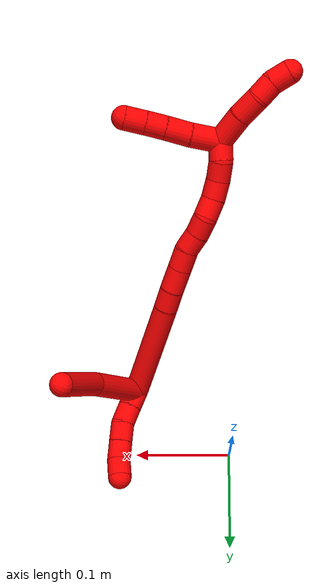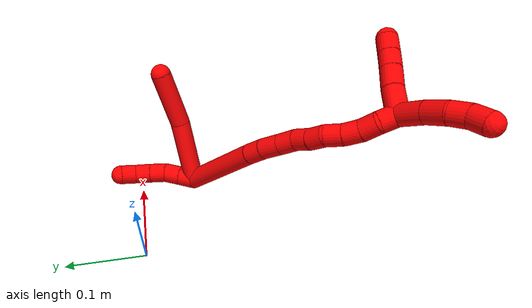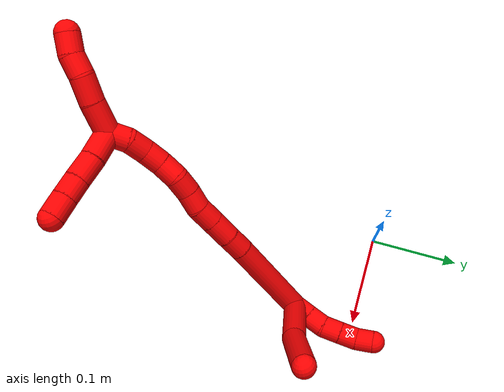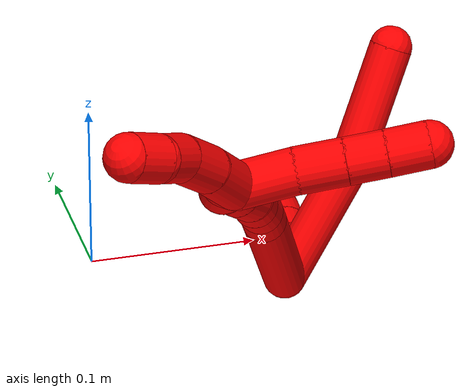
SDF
<sdf version="1.7">
 <world name="default">
  <model name="2">
   <static>0</static>
   <link name="2">
    <collision name="collision-cylinder-e_1_2_8">
     <pose>0.036523 -0.007193 0.015218 0.441521 1.13894 0.2854</pose>
     <geometry><cylinder><radius>0.0125</radius><length>0.08043</length></cylinder></geometry>
     <surface>
      <friction><ode><mu>1.16</mu><mu2>1.16</mu2><slip1>0</slip1><slip2>0</slip2></ode></friction>
      <contact><ode><kp>1e+06</kp><kd>1</kd><max_vel>0</max_vel><min_depth>0.001</min_depth></ode></contact>
     </surface>
    </collision>
    <visual name="visual-cylinder-e_1_2_8">
     <pose>0.036523 -0.007193 0.015218 0.441521 1.13894 0.2854</pose>
     <geometry><cylinder><radius>0.0125</radius><length>0.08043</length></cylinder></geometry>
     <material><ambient>1 0 0 1</ambient></material>
    </visual>
    <collision name="collision-cylinder-e_2_8_6">
     <pose>0.104374 -0.014484 0.045553 0.006518 1.12123 0.004092</pose>
     <geometry><cylinder><radius>0.0125</radius><length>0.06957</length></cylinder></geometry>
     <surface>
      <friction><ode><mu>1.16</mu><mu2>1.16</mu2><slip1>0</slip1><slip2>0</slip2></ode></friction>
      <contact><ode><kp>1e+06</kp><kd>1</kd><max_vel>0</max_vel><min_depth>0.001</min_depth></ode></contact>
     </surface>
    </collision>
    <visual name="visual-cylinder-e_2_8_6">
     <pose>0.104374 -0.014484 0.045553 0.006518 1.12123 0.004092</pose>
     <geometry><cylinder><radius>0.0125</radius><length>0.06957</length></cylinder></geometry>
     <material><ambient>1 0 0 1</ambient></material>
    </visual>
    <collision name="collision-cylinder-e_1_2_9">
     <pose>0.006976 0.005445 -0.004657 -2.27843 0.772053 -1.44611</pose>
     <geometry><cylinder><radius>0.0125</radius><length>0.02</length></cylinder></geometry>
     <surface>
      <friction><ode><mu>1.16</mu><mu2>1.16</mu2><slip1>0</slip1><slip2>0</slip2></ode></friction>
      <contact><ode><kp>1e+06</kp><kd>1</kd><max_vel>0</max_vel><min_depth>0.001</min_depth></ode></contact>
     </surface>
    </collision>
    <visual name="visual-cylinder-e_1_2_9">
     <pose>0.006976 0.005445 -0.004657 -2.27843 0.772053 -1.44611</pose>
     <geometry><cylinder><radius>0.0125</radius><length>0.02</length></cylinder></geometry>
     <material><ambient>1 0 0 1</ambient></material>
    </visual>
    <collision name="collision-cylinder-e_2_9_10">
     <pose>0.020802 0.016452 -0.014019 -2.27278 0.754636 -1.41383</pose>
     <geometry><cylinder><radius>0.0125</radius><length>0.02</length></cylinder></geometry>
     <surface>
      <friction><ode><mu>1.16</mu><mu2>1.16</mu2><slip1>0</slip1><slip2>0</slip2></ode></friction>
      <contact><ode><kp>1e+06</kp><kd>1</kd><max_vel>0</max_vel><min_depth>0.001</min_depth></ode></contact>
     </surface>
    </collision>
    <visual name="visual-cylinder-e_2_9_10">
     <pose>0.020802 0.016452 -0.014019 -2.27278 0.754636 -1.41383</pose>
     <geometry><cylinder><radius>0.0125</radius><length>0.02</length></cylinder></geometry>
     <material><ambient>1 0 0 1</ambient></material>
    </visual>
    <collision name="collision-cylinder-e_3_10_11">
     <pose>0.032702 0.029599 -0.022843 -2.06839 0.529304 -0.855027</pose>
     <geometry><cylinder><radius>0.0125</radius><length>0.02</length></cylinder></geometry>
     <surface>
      <friction><ode><mu>1.16</mu><mu2>1.16</mu2><slip1>0</slip1><slip2>0</slip2></ode></friction>
      <contact><ode><kp>1e+06</kp><kd>1</kd><max_vel>0</max_vel><min_depth>0.001</min_depth></ode></contact>
     </surface>
    </collision>
    <visual name="visual-cylinder-e_3_10_11">
     <pose>0.032702 0.029599 -0.022843 -2.06839 0.529304 -0.855027</pose>
     <geometry><cylinder><radius>0.0125</radius><length>0.02</length></cylinder></geometry>
     <material><ambient>1 0 0 1</ambient></material>
    </visual>
    <collision name="collision-cylinder-e_4_11_12">
     <pose>0.042615 0.044821 -0.031209 -2.07815 0.507936 -0.831151</pose>
     <geometry><cylinder><radius>0.0125</radius><length>0.02</length></cylinder></geometry>
     <surface>
      <friction><ode><mu>1.16</mu><mu2>1.16</mu2><slip1>0</slip1><slip2>0</slip2></ode></friction>
      <contact><ode><kp>1e+06</kp><kd>1</kd><max_vel>0</max_vel><min_depth>0.001</min_depth></ode></contact>
     </surface>
    </collision>
    <visual name="visual-cylinder-e_4_11_12">
     <pose>0.042615 0.044821 -0.031209 -2.07815 0.507936 -0.831151</pose>
     <geometry><cylinder><radius>0.0125</radius><length>0.02</length></cylinder></geometry>
     <material><ambient>1 0 0 1</ambient></material>
    </visual>
    <collision name="collision-cylinder-e_5_12_5">
     <pose>0.052594 0.060925 -0.036919 -1.74217 0.536935 -0.631742</pose>
     <geometry><cylinder><radius>0.0125</radius><length>0.02</length></cylinder></geometry>
     <surface>
      <friction><ode><mu>1.16</mu><mu2>1.16</mu2><slip1>0</slip1><slip2>0</slip2></ode></friction>
      <contact><ode><kp>1e+06</kp><kd>1</kd><max_vel>0</max_vel><min_depth>0.001</min_depth></ode></contact>
     </surface>
    </collision>
    <visual name="visual-cylinder-e_5_12_5">
     <pose>0.052594 0.060925 -0.036919 -1.74217 0.536935 -0.631742</pose>
     <geometry><cylinder><radius>0.0125</radius><length>0.02</length></cylinder></geometry>
     <material><ambient>1 0 0 1</ambient></material>
    </visual>
    <collision name="collision-cylinder-e_1_2_13">
     <pose>-0.002439 -0.017809 0.052373 0.32778 -0.04406 -0.007287</pose>
     <geometry><cylinder><radius>0.0125</radius><length>0.110743</length></cylinder></geometry>
     <surface>
      <friction><ode><mu>1.16</mu><mu2>1.16</mu2><slip1>0</slip1><slip2>0</slip2></ode></friction>
      <contact><ode><kp>1e+06</kp><kd>1</kd><max_vel>0</max_vel><min_depth>0.001</min_depth></ode></contact>
     </surface>
    </collision>
    <visual name="visual-cylinder-e_1_2_13">
     <pose>-0.002439 -0.017809 0.052373 0.32778 -0.04406 -0.007287</pose>
     <geometry><cylinder><radius>0.0125</radius><length>0.110743</length></cylinder></geometry>
     <material><ambient>1 0 0 1</ambient></material>
    </visual>
    <collision name="collision-cylinder-e_2_13_14">
     <pose>-0.006009 -0.039761 0.114952 0.385524 -0.102359 -0.019996</pose>
     <geometry><cylinder><radius>0.0125</radius><length>0.022147</length></cylinder></geometry>
     <surface>
      <friction><ode><mu>1.16</mu><mu2>1.16</mu2><slip1>0</slip1><slip2>0</slip2></ode></friction>
      <contact><ode><kp>1e+06</kp><kd>1</kd><max_vel>0</max_vel><min_depth>0.001</min_depth></ode></contact>
     </surface>
    </collision>
    <visual name="visual-cylinder-e_2_13_14">
     <pose>-0.006009 -0.039761 0.114952 0.385524 -0.102359 -0.019996</pose>
     <geometry><cylinder><radius>0.0125</radius><length>0.022147</length></cylinder></geometry>
     <material><ambient>1 0 0 1</ambient></material>
    </visual>
    <collision name="collision-cylinder-e_3_14_15">
     <pose>-0.00957 -0.048806 0.136514 0.407627 -0.193929 -0.040203</pose>
     <geometry><cylinder><radius>0.0125</radius><length>0.025207</length></cylinder></geometry>
     <surface>
      <friction><ode><mu>1.16</mu><mu2>1.16</mu2><slip1>0</slip1><slip2>0</slip2></ode></friction>
      <contact><ode><kp>1e+06</kp><kd>1</kd><max_vel>0</max_vel><min_depth>0.001</min_depth></ode></contact>
     </surface>
    </collision>
    <visual name="visual-cylinder-e_3_14_15">
     <pose>-0.00957 -0.048806 0.136514 0.407627 -0.193929 -0.040203</pose>
     <geometry><cylinder><radius>0.0125</radius><length>0.025207</length></cylinder></geometry>
     <material><ambient>1 0 0 1</ambient></material>
    </visual>
    <collision name="collision-cylinder-e_4_15_16">
     <pose>-0.013905 -0.057903 0.157617 0.406267 -0.17776 -0.036707</pose>
     <geometry><cylinder><radius>0.0125</radius><length>0.021567</length></cylinder></geometry>
     <surface>
      <friction><ode><mu>1.16</mu><mu2>1.16</mu2><slip1>0</slip1><slip2>0</slip2></ode></friction>
      <contact><ode><kp>1e+06</kp><kd>1</kd><max_vel>0</max_vel><min_depth>0.001</min_depth></ode></contact>
     </surface>
    </collision>
    <visual name="visual-cylinder-e_4_15_16">
     <pose>-0.013905 -0.057903 0.157617 0.406267 -0.17776 -0.036707</pose>
     <geometry><cylinder><radius>0.0125</radius><length>0.021567</length></cylinder></geometry>
     <material><ambient>1 0 0 1</ambient></material>
    </visual>
    <collision name="collision-cylinder-e_5_16_17">
     <pose>-0.018888 -0.063957 0.176714 0.196364 -0.31217 -0.030998</pose>
     <geometry><cylinder><radius>0.0125</radius><length>0.020028</length></cylinder></geometry>
     <surface>
      <friction><ode><mu>1.16</mu><mu2>1.16</mu2><slip1>0</slip1><slip2>0</slip2></ode></friction>
      <contact><ode><kp>1e+06</kp><kd>1</kd><max_vel>0</max_vel><min_depth>0.001</min_depth></ode></contact>
     </surface>
    </collision>
    <visual name="visual-cylinder-e_5_16_17">
     <pose>-0.018888 -0.063957 0.176714 0.196364 -0.31217 -0.030998</pose>
     <geometry><cylinder><radius>0.0125</radius><length>0.020028</length></cylinder></geometry>
     <material><ambient>1 0 0 1</ambient></material>
    </visual>
    <collision name="collision-cylinder-e_6_17_18">
     <pose>-0.023725 -0.06866 0.195488 0.293004 -0.177049 -0.026192</pose>
     <geometry><cylinder><radius>0.0125</radius><length>0.020006</length></cylinder></geometry>
     <surface>
      <friction><ode><mu>1.16</mu><mu2>1.16</mu2><slip1>0</slip1><slip2>0</slip2></ode></friction>
      <contact><ode><kp>1e+06</kp><kd>1</kd><max_vel>0</max_vel><min_depth>0.001</min_depth></ode></contact>
     </surface>
    </collision>
    <visual name="visual-cylinder-e_6_17_18">
     <pose>-0.023725 -0.06866 0.195488 0.293004 -0.177049 -0.026192</pose>
     <geometry><cylinder><radius>0.0125</radius><length>0.020006</length></cylinder></geometry>
     <material><ambient>1 0 0 1</ambient></material>
    </visual>
    <collision name="collision-cylinder-e_7_18_19">
     <pose>-0.029734 -0.076172 0.212858 0.531299 -0.431967 -0.11925</pose>
     <geometry><cylinder><radius>0.0125</radius><length>0.02029</length></cylinder></geometry>
     <surface>
      <friction><ode><mu>1.16</mu><mu2>1.16</mu2><slip1>0</slip1><slip2>0</slip2></ode></friction>
      <contact><ode><kp>1e+06</kp><kd>1</kd><max_vel>0</max_vel><min_depth>0.001</min_depth></ode></contact>
     </surface>
    </collision>
    <visual name="visual-cylinder-e_7_18_19">
     <pose>-0.029734 -0.076172 0.212858 0.531299 -0.431967 -0.11925</pose>
     <geometry><cylinder><radius>0.0125</radius><length>0.02029</length></cylinder></geometry>
     <material><ambient>1 0 0 1</ambient></material>
    </visual>
    <collision name="collision-cylinder-e_8_19_20">
     <pose>-0.036435 -0.086068 0.228971 0.569207 -0.24778 -0.072828</pose>
     <geometry><cylinder><radius>0.0125</radius><length>0.02001</length></cylinder></geometry>
     <surface>
      <friction><ode><mu>1.16</mu><mu2>1.16</mu2><slip1>0</slip1><slip2>0</slip2></ode></friction>
      <contact><ode><kp>1e+06</kp><kd>1</kd><max_vel>0</max_vel><min_depth>0.001</min_depth></ode></contact>
     </surface>
    </collision>
    <visual name="visual-cylinder-e_8_19_20">
     <pose>-0.036435 -0.086068 0.228971 0.569207 -0.24778 -0.072828</pose>
     <geometry><cylinder><radius>0.0125</radius><length>0.02001</length></cylinder></geometry>
     <material><ambient>1 0 0 1</ambient></material>
    </visual>
    <collision name="collision-cylinder-e_9_20_21">
     <pose>-0.03942 -0.096535 0.245643 0.55237 -0.053121 -0.015059</pose>
     <geometry><cylinder><radius>0.0125</radius><length>0.020001</length></cylinder></geometry>
     <surface>
      <friction><ode><mu>1.16</mu><mu2>1.16</mu2><slip1>0</slip1><slip2>0</slip2></ode></friction>
      <contact><ode><kp>1e+06</kp><kd>1</kd><max_vel>0</max_vel><min_depth>0.001</min_depth></ode></contact>
     </surface>
    </collision>
    <visual name="visual-cylinder-e_9_20_21">
     <pose>-0.03942 -0.096535 0.245643 0.55237 -0.053121 -0.015059</pose>
     <geometry><cylinder><radius>0.0125</radius><length>0.020001</length></cylinder></geometry>
     <material><ambient>1 0 0 1</ambient></material>
    </visual>
    <collision name="collision-cylinder-e_10_21_1">
     <pose>-0.041508 -0.109426 0.260391 0.88606 -0.156349 -0.074303</pose>
     <geometry><cylinder><radius>0.0125</radius><length>0.02</length></cylinder></geometry>
     <surface>
      <friction><ode><mu>1.16</mu><mu2>1.16</mu2><slip1>0</slip1><slip2>0</slip2></ode></friction>
      <contact><ode><kp>1e+06</kp><kd>1</kd><max_vel>0</max_vel><min_depth>0.001</min_depth></ode></contact>
     </surface>
    </collision>
    <visual name="visual-cylinder-e_10_21_1">
     <pose>-0.041508 -0.109426 0.260391 0.88606 -0.156349 -0.074303</pose>
     <geometry><cylinder><radius>0.0125</radius><length>0.02</length></cylinder></geometry>
     <material><ambient>1 0 0 1</ambient></material>
    </visual>
    <collision name="collision-cylinder-e_1_1_22">
     <pose>-0.046937 -0.118271 0.282755 0.073878 -0.235149 -0.00873</pose>
     <geometry><cylinder><radius>0.0125</radius><length>0.033234</length></cylinder></geometry>
     <surface>
      <friction><ode><mu>1.16</mu><mu2>1.16</mu2><slip1>0</slip1><slip2>0</slip2></ode></friction>
      <contact><ode><kp>1e+06</kp><kd>1</kd><max_vel>0</max_vel><min_depth>0.001</min_depth></ode></contact>
     </surface>
    </collision>
    <visual name="visual-cylinder-e_1_1_22">
     <pose>-0.046937 -0.118271 0.282755 0.073878 -0.235149 -0.00873</pose>
     <geometry><cylinder><radius>0.0125</radius><length>0.033234</length></cylinder></geometry>
     <material><ambient>1 0 0 1</ambient></material>
    </visual>
    <collision name="collision-cylinder-e_2_22_23">
     <pose>-0.054931 -0.119228 0.311395 -0.018757 -0.317914 0.003007</pose>
     <geometry><cylinder><radius>0.0125</radius><length>0.026376</length></cylinder></geometry>
     <surface>
      <friction><ode><mu>1.16</mu><mu2>1.16</mu2><slip1>0</slip1><slip2>0</slip2></ode></friction>
      <contact><ode><kp>1e+06</kp><kd>1</kd><max_vel>0</max_vel><min_depth>0.001</min_depth></ode></contact>
     </surface>
    </collision>
    <visual name="visual-cylinder-e_2_22_23">
     <pose>-0.054931 -0.119228 0.311395 -0.018757 -0.317914 0.003007</pose>
     <geometry><cylinder><radius>0.0125</radius><length>0.026376</length></cylinder></geometry>
     <material><ambient>1 0 0 1</ambient></material>
    </visual>
    <collision name="collision-cylinder-e_3_23_24">
     <pose>-0.064027 -0.120112 0.332637 0.127635 -0.514994 -0.033654</pose>
     <geometry><cylinder><radius>0.0125</radius><length>0.020198</length></cylinder></geometry>
     <surface>
      <friction><ode><mu>1.16</mu><mu2>1.16</mu2><slip1>0</slip1><slip2>0</slip2></ode></friction>
      <contact><ode><kp>1e+06</kp><kd>1</kd><max_vel>0</max_vel><min_depth>0.001</min_depth></ode></contact>
     </surface>
    </collision>
    <visual name="visual-cylinder-e_3_23_24">
     <pose>-0.064027 -0.120112 0.332637 0.127635 -0.514994 -0.033654</pose>
     <geometry><cylinder><radius>0.0125</radius><length>0.020198</length></cylinder></geometry>
     <material><ambient>1 0 0 1</ambient></material>
    </visual>
    <collision name="collision-cylinder-e_4_24_4">
     <pose>-0.074403 -0.119507 0.349709 -0.203502 -0.564531 0.059204</pose>
     <geometry><cylinder><radius>0.0125</radius><length>0.020192</length></cylinder></geometry>
     <surface>
      <friction><ode><mu>1.16</mu><mu2>1.16</mu2><slip1>0</slip1><slip2>0</slip2></ode></friction>
      <contact><ode><kp>1e+06</kp><kd>1</kd><max_vel>0</max_vel><min_depth>0.001</min_depth></ode></contact>
     </surface>
    </collision>
    <visual name="visual-cylinder-e_4_24_4">
     <pose>-0.074403 -0.119507 0.349709 -0.203502 -0.564531 0.059204</pose>
     <geometry><cylinder><radius>0.0125</radius><length>0.020192</length></cylinder></geometry>
     <material><ambient>1 0 0 1</ambient></material>
    </visual>
    <collision name="collision-cylinder-e_1_1_25">
     <pose>-0.031856 -0.127066 0.262719 1.94477 0.807242 1.11917</pose>
     <geometry><cylinder><radius>0.0125</radius><length>0.031033</length></cylinder></geometry>
     <surface>
      <friction><ode><mu>1.16</mu><mu2>1.16</mu2><slip1>0</slip1><slip2>0</slip2></ode></friction>
      <contact><ode><kp>1e+06</kp><kd>1</kd><max_vel>0</max_vel><min_depth>0.001</min_depth></ode></contact>
     </surface>
    </collision>
    <visual name="visual-cylinder-e_1_1_25">
     <pose>-0.031856 -0.127066 0.262719 1.94477 0.807242 1.11917</pose>
     <geometry><cylinder><radius>0.0125</radius><length>0.031033</length></cylinder></geometry>
     <material><ambient>1 0 0 1</ambient></material>
    </visual>
    <collision name="collision-cylinder-e_2_25_26">
     <pose>-0.012103 -0.146287 0.255864 1.87864 0.722756 0.953997</pose>
     <geometry><cylinder><radius>0.0125</radius><length>0.025837</length></cylinder></geometry>
     <surface>
      <friction><ode><mu>1.16</mu><mu2>1.16</mu2><slip1>0</slip1><slip2>0</slip2></ode></friction>
      <contact><ode><kp>1e+06</kp><kd>1</kd><max_vel>0</max_vel><min_depth>0.001</min_depth></ode></contact>
     </surface>
    </collision>
    <visual name="visual-cylinder-e_2_25_26">
     <pose>-0.012103 -0.146287 0.255864 1.87864 0.722756 0.953997</pose>
     <geometry><cylinder><radius>0.0125</radius><length>0.025837</length></cylinder></geometry>
     <material><ambient>1 0 0 1</ambient></material>
    </visual>
    <collision name="collision-cylinder-e_3_26_27">
     <pose>0.003447 -0.162821 0.25036 1.90906 0.735575 0.996478</pose>
     <geometry><cylinder><radius>0.0125</radius><length>0.020877</length></cylinder></geometry>
     <surface>
      <friction><ode><mu>1.16</mu><mu2>1.16</mu2><slip1>0</slip1><slip2>0</slip2></ode></friction>
      <contact><ode><kp>1e+06</kp><kd>1</kd><max_vel>0</max_vel><min_depth>0.001</min_depth></ode></contact>
     </surface>
    </collision>
    <visual name="visual-cylinder-e_3_26_27">
     <pose>0.003447 -0.162821 0.25036 1.90906 0.735575 0.996478</pose>
     <geometry><cylinder><radius>0.0125</radius><length>0.020877</length></cylinder></geometry>
     <material><ambient>1 0 0 1</ambient></material>
    </visual>
    <collision name="collision-cylinder-e_4_27_3">
     <pose>0.018077 -0.17773 0.245006 1.92175 0.755171 1.03246</pose>
     <geometry><cylinder><radius>0.0125</radius><length>0.022253</length></cylinder></geometry>
     <surface>
      <friction><ode><mu>1.16</mu><mu2>1.16</mu2><slip1>0</slip1><slip2>0</slip2></ode></friction>
      <contact><ode><kp>1e+06</kp><kd>1</kd><max_vel>0</max_vel><min_depth>0.001</min_depth></ode></contact>
     </surface>
    </collision>
    <visual name="visual-cylinder-e_4_27_3">
     <pose>0.018077 -0.17773 0.245006 1.92175 0.755171 1.03246</pose>
     <geometry><cylinder><radius>0.0125</radius><length>0.022253</length></cylinder></geometry>
     <material><ambient>1 0 0 1</ambient></material>
    </visual>
    <collision name="collision-sphere-3">
     <pose>0.025704 -0.185338 0.242221 0 -0 0</pose>
     <geometry><sphere><radius>0.0125</radius></sphere></geometry>
     <surface>
      <friction><ode><mu>1.16</mu><mu2>1.16</mu2><slip1>0</slip1><slip2>0</slip2></ode></friction>
      <contact><ode><kp>1e+06</kp><kd>1</kd><max_vel>0</max_vel><min_depth>0.001</min_depth></ode></contact>
     </surface>
    </collision>
    <visual name="visual-sphere-3">
     <pose>0.025704 -0.185338 0.242221 0 -0 0</pose>
     <geometry><sphere><radius>0.0125</radius></sphere></geometry>
     <material><ambient>1 0 0 1</ambient></material>
    </visual>
    <collision name="collision-sphere-27">
     <pose>0.010451 -0.170122 0.247791 0 -0 0</pose>
     <geometry><sphere><radius>0.0125</radius></sphere></geometry>
     <surface>
      <friction><ode><mu>1.16</mu><mu2>1.16</mu2><slip1>0</slip1><slip2>0</slip2></ode></friction>
      <contact><ode><kp>1e+06</kp><kd>1</kd><max_vel>0</max_vel><min_depth>0.001</min_depth></ode></contact>
     </surface>
    </collision>
    <visual name="visual-sphere-27">
     <pose>0.010451 -0.170122 0.247791 0 -0 0</pose>
     <geometry><sphere><radius>0.0125</radius></sphere></geometry>
     <material><ambient>1 0 0 1</ambient></material>
    </visual>
    <collision name="collision-sphere-26">
     <pose>-0.003558 -0.15552 0.252928 0 -0 0</pose>
     <geometry><sphere><radius>0.0125</radius></sphere></geometry>
     <surface>
      <friction><ode><mu>1.16</mu><mu2>1.16</mu2><slip1>0</slip1><slip2>0</slip2></ode></friction>
      <contact><ode><kp>1e+06</kp><kd>1</kd><max_vel>0</max_vel><min_depth>0.001</min_depth></ode></contact>
     </surface>
    </collision>
    <visual name="visual-sphere-26">
     <pose>-0.003558 -0.15552 0.252928 0 -0 0</pose>
     <geometry><sphere><radius>0.0125</radius></sphere></geometry>
     <material><ambient>1 0 0 1</ambient></material>
    </visual>
    <collision name="collision-sphere-25">
     <pose>-0.020648 -0.137054 0.2588 0 -0 0</pose>
     <geometry><sphere><radius>0.0125</radius></sphere></geometry>
     <surface>
      <friction><ode><mu>1.16</mu><mu2>1.16</mu2><slip1>0</slip1><slip2>0</slip2></ode></friction>
      <contact><ode><kp>1e+06</kp><kd>1</kd><max_vel>0</max_vel><min_depth>0.001</min_depth></ode></contact>
     </surface>
    </collision>
    <visual name="visual-sphere-25">
     <pose>-0.020648 -0.137054 0.2588 0 -0 0</pose>
     <geometry><sphere><radius>0.0125</radius></sphere></geometry>
     <material><ambient>1 0 0 1</ambient></material>
    </visual>
    <collision name="collision-sphere-4">
     <pose>-0.079804 -0.117783 0.358062 0 -0 0</pose>
     <geometry><sphere><radius>0.0125</radius></sphere></geometry>
     <surface>
      <friction><ode><mu>1.16</mu><mu2>1.16</mu2><slip1>0</slip1><slip2>0</slip2></ode></friction>
      <contact><ode><kp>1e+06</kp><kd>1</kd><max_vel>0</max_vel><min_depth>0.001</min_depth></ode></contact>
     </surface>
    </collision>
    <visual name="visual-sphere-4">
     <pose>-0.079804 -0.117783 0.358062 0 -0 0</pose>
     <geometry><sphere><radius>0.0125</radius></sphere></geometry>
     <material><ambient>1 0 0 1</ambient></material>
    </visual>
    <collision name="collision-sphere-24">
     <pose>-0.069001 -0.121231 0.341355 0 -0 0</pose>
     <geometry><sphere><radius>0.0125</radius></sphere></geometry>
     <surface>
      <friction><ode><mu>1.16</mu><mu2>1.16</mu2><slip1>0</slip1><slip2>0</slip2></ode></friction>
      <contact><ode><kp>1e+06</kp><kd>1</kd><max_vel>0</max_vel><min_depth>0.001</min_depth></ode></contact>
     </surface>
    </collision>
    <visual name="visual-sphere-24">
     <pose>-0.069001 -0.121231 0.341355 0 -0 0</pose>
     <geometry><sphere><radius>0.0125</radius></sphere></geometry>
     <material><ambient>1 0 0 1</ambient></material>
    </visual>
    <collision name="collision-sphere-23">
     <pose>-0.059053 -0.118993 0.32392 0 -0 0</pose>
     <geometry><sphere><radius>0.0125</radius></sphere></geometry>
     <surface>
      <friction><ode><mu>1.16</mu><mu2>1.16</mu2><slip1>0</slip1><slip2>0</slip2></ode></friction>
      <contact><ode><kp>1e+06</kp><kd>1</kd><max_vel>0</max_vel><min_depth>0.001</min_depth></ode></contact>
     </surface>
    </collision>
    <visual name="visual-sphere-23">
     <pose>-0.059053 -0.118993 0.32392 0 -0 0</pose>
     <geometry><sphere><radius>0.0125</radius></sphere></geometry>
     <material><ambient>1 0 0 1</ambient></material>
    </visual>
    <collision name="collision-sphere-22">
     <pose>-0.050809 -0.119463 0.29887 0 -0 0</pose>
     <geometry><sphere><radius>0.0125</radius></sphere></geometry>
     <surface>
      <friction><ode><mu>1.16</mu><mu2>1.16</mu2><slip1>0</slip1><slip2>0</slip2></ode></friction>
      <contact><ode><kp>1e+06</kp><kd>1</kd><max_vel>0</max_vel><min_depth>0.001</min_depth></ode></contact>
     </surface>
    </collision>
    <visual name="visual-sphere-22">
     <pose>-0.050809 -0.119463 0.29887 0 -0 0</pose>
     <geometry><sphere><radius>0.0125</radius></sphere></geometry>
     <material><ambient>1 0 0 1</ambient></material>
    </visual>
    <collision name="collision-sphere-1">
     <pose>-0.043065 -0.117078 0.266639 0 -0 0</pose>
     <geometry><sphere><radius>0.0125</radius></sphere></geometry>
     <surface>
      <friction><ode><mu>1.16</mu><mu2>1.16</mu2><slip1>0</slip1><slip2>0</slip2></ode></friction>
      <contact><ode><kp>1e+06</kp><kd>1</kd><max_vel>0</max_vel><min_depth>0.001</min_depth></ode></contact>
     </surface>
    </collision>
    <visual name="visual-sphere-1">
     <pose>-0.043065 -0.117078 0.266639 0 -0 0</pose>
     <geometry><sphere><radius>0.0125</radius></sphere></geometry>
     <material><ambient>1 0 0 1</ambient></material>
    </visual>
    <collision name="collision-sphere-21">
     <pose>-0.039951 -0.101775 0.254144 0 -0 0</pose>
     <geometry><sphere><radius>0.0125</radius></sphere></geometry>
     <surface>
      <friction><ode><mu>1.16</mu><mu2>1.16</mu2><slip1>0</slip1><slip2>0</slip2></ode></friction>
      <contact><ode><kp>1e+06</kp><kd>1</kd><max_vel>0</max_vel><min_depth>0.001</min_depth></ode></contact>
     </surface>
    </collision>
    <visual name="visual-sphere-21">
     <pose>-0.039951 -0.101775 0.254144 0 -0 0</pose>
     <geometry><sphere><radius>0.0125</radius></sphere></geometry>
     <material><ambient>1 0 0 1</ambient></material>
    </visual>
    <collision name="collision-sphere-11">
     <pose>0.037751 0.037184 -0.026963 0 -0 0</pose>
     <geometry><sphere><radius>0.0125</radius></sphere></geometry>
     <surface>
      <friction><ode><mu>1.16</mu><mu2>1.16</mu2><slip1>0</slip1><slip2>0</slip2></ode></friction>
      <contact><ode><kp>1e+06</kp><kd>1</kd><max_vel>0</max_vel><min_depth>0.001</min_depth></ode></contact>
     </surface>
    </collision>
    <visual name="visual-sphere-11">
     <pose>0.037751 0.037184 -0.026963 0 -0 0</pose>
     <geometry><sphere><radius>0.0125</radius></sphere></geometry>
     <material><ambient>1 0 0 1</ambient></material>
    </visual>
    <collision name="collision-sphere-10">
     <pose>0.027653 0.022015 -0.018723 0 -0 0</pose>
     <geometry><sphere><radius>0.0125</radius></sphere></geometry>
     <surface>
      <friction><ode><mu>1.16</mu><mu2>1.16</mu2><slip1>0</slip1><slip2>0</slip2></ode></friction>
      <contact><ode><kp>1e+06</kp><kd>1</kd><max_vel>0</max_vel><min_depth>0.001</min_depth></ode></contact>
     </surface>
    </collision>
    <visual name="visual-sphere-10">
     <pose>0.027653 0.022015 -0.018723 0 -0 0</pose>
     <geometry><sphere><radius>0.0125</radius></sphere></geometry>
     <material><ambient>1 0 0 1</ambient></material>
    </visual>
    <collision name="collision-sphere-6">
     <pose>0.135703 -0.014583 0.060669 0 -0 0</pose>
     <geometry><sphere><radius>0.0125</radius></sphere></geometry>
     <surface>
      <friction><ode><mu>1.16</mu><mu2>1.16</mu2><slip1>0</slip1><slip2>0</slip2></ode></friction>
      <contact><ode><kp>1e+06</kp><kd>1</kd><max_vel>0</max_vel><min_depth>0.001</min_depth></ode></contact>
     </surface>
    </collision>
    <visual name="visual-sphere-6">
     <pose>0.135703 -0.014583 0.060669 0 -0 0</pose>
     <geometry><sphere><radius>0.0125</radius></sphere></geometry>
     <material><ambient>1 0 0 1</ambient></material>
    </visual>
    <collision name="collision-sphere-9">
     <pose>0.013952 0.010889 -0.009315 0 -0 0</pose>
     <geometry><sphere><radius>0.0125</radius></sphere></geometry>
     <surface>
      <friction><ode><mu>1.16</mu><mu2>1.16</mu2><slip1>0</slip1><slip2>0</slip2></ode></friction>
      <contact><ode><kp>1e+06</kp><kd>1</kd><max_vel>0</max_vel><min_depth>0.001</min_depth></ode></contact>
     </surface>
    </collision>
    <visual name="visual-sphere-9">
     <pose>0.013952 0.010889 -0.009315 0 -0 0</pose>
     <geometry><sphere><radius>0.0125</radius></sphere></geometry>
     <material><ambient>1 0 0 1</ambient></material>
    </visual>
    <collision name="collision-sphere-2">
     <geometry><sphere><radius>0.0125</radius></sphere></geometry>
     <surface>
      <friction><ode><mu>1.16</mu><mu2>1.16</mu2><slip1>0</slip1><slip2>0</slip2></ode></friction>
      <contact><ode><kp>1e+06</kp><kd>1</kd><max_vel>0</max_vel><min_depth>0.001</min_depth></ode></contact>
     </surface>
    </collision>
    <visual name="visual-sphere-2">
     <geometry><sphere><radius>0.0125</radius></sphere></geometry>
     <material><ambient>1 0 0 1</ambient></material>
    </visual>
    <collision name="collision-sphere-19">
     <pose>-0.033982 -0.08084 0.220801 0 -0 0</pose>
     <geometry><sphere><radius>0.0125</radius></sphere></geometry>
     <surface>
      <friction><ode><mu>1.16</mu><mu2>1.16</mu2><slip1>0</slip1><slip2>0</slip2></ode></friction>
      <contact><ode><kp>1e+06</kp><kd>1</kd><max_vel>0</max_vel><min_depth>0.001</min_depth></ode></contact>
     </surface>
    </collision>
    <visual name="visual-sphere-19">
     <pose>-0.033982 -0.08084 0.220801 0 -0 0</pose>
     <geometry><sphere><radius>0.0125</radius></sphere></geometry>
     <material><ambient>1 0 0 1</ambient></material>
    </visual>
    <collision name="collision-sphere-8">
     <pose>0.073046 -0.014386 0.030437 0 -0 0</pose>
     <geometry><sphere><radius>0.0125</radius></sphere></geometry>
     <surface>
      <friction><ode><mu>1.16</mu><mu2>1.16</mu2><slip1>0</slip1><slip2>0</slip2></ode></friction>
      <contact><ode><kp>1e+06</kp><kd>1</kd><max_vel>0</max_vel><min_depth>0.001</min_depth></ode></contact>
     </surface>
    </collision>
    <visual name="visual-sphere-8">
     <pose>0.073046 -0.014386 0.030437 0 -0 0</pose>
     <geometry><sphere><radius>0.0125</radius></sphere></geometry>
     <material><ambient>1 0 0 1</ambient></material>
    </visual>
    <collision name="collision-sphere-12">
     <pose>0.047479 0.052458 -0.035454 0 -0 0</pose>
     <geometry><sphere><radius>0.0125</radius></sphere></geometry>
     <surface>
      <friction><ode><mu>1.16</mu><mu2>1.16</mu2><slip1>0</slip1><slip2>0</slip2></ode></friction>
      <contact><ode><kp>1e+06</kp><kd>1</kd><max_vel>0</max_vel><min_depth>0.001</min_depth></ode></contact>
     </surface>
    </collision>
    <visual name="visual-sphere-12">
     <pose>0.047479 0.052458 -0.035454 0 -0 0</pose>
     <geometry><sphere><radius>0.0125</radius></sphere></geometry>
     <material><ambient>1 0 0 1</ambient></material>
    </visual>
    <collision name="collision-sphere-5">
     <pose>0.057709 0.069392 -0.038385 0 -0 0</pose>
     <geometry><sphere><radius>0.0125</radius></sphere></geometry>
     <surface>
      <friction><ode><mu>1.16</mu><mu2>1.16</mu2><slip1>0</slip1><slip2>0</slip2></ode></friction>
      <contact><ode><kp>1e+06</kp><kd>1</kd><max_vel>0</max_vel><min_depth>0.001</min_depth></ode></contact>
     </surface>
    </collision>
    <visual name="visual-sphere-5">
     <pose>0.057709 0.069392 -0.038385 0 -0 0</pose>
     <geometry><sphere><radius>0.0125</radius></sphere></geometry>
     <material><ambient>1 0 0 1</ambient></material>
    </visual>
    <collision name="collision-sphere-13">
     <pose>-0.004878 -0.035618 0.104745 0 -0 0</pose>
     <geometry><sphere><radius>0.0125</radius></sphere></geometry>
     <surface>
      <friction><ode><mu>1.16</mu><mu2>1.16</mu2><slip1>0</slip1><slip2>0</slip2></ode></friction>
      <contact><ode><kp>1e+06</kp><kd>1</kd><max_vel>0</max_vel><min_depth>0.001</min_depth></ode></contact>
     </surface>
    </collision>
    <visual name="visual-sphere-13">
     <pose>-0.004878 -0.035618 0.104745 0 -0 0</pose>
     <geometry><sphere><radius>0.0125</radius></sphere></geometry>
     <material><ambient>1 0 0 1</ambient></material>
    </visual>
    <collision name="collision-sphere-14">
     <pose>-0.007141 -0.043903 0.125159 0 -0 0</pose>
     <geometry><sphere><radius>0.0125</radius></sphere></geometry>
     <surface>
      <friction><ode><mu>1.16</mu><mu2>1.16</mu2><slip1>0</slip1><slip2>0</slip2></ode></friction>
      <contact><ode><kp>1e+06</kp><kd>1</kd><max_vel>0</max_vel><min_depth>0.001</min_depth></ode></contact>
     </surface>
    </collision>
    <visual name="visual-sphere-14">
     <pose>-0.007141 -0.043903 0.125159 0 -0 0</pose>
     <geometry><sphere><radius>0.0125</radius></sphere></geometry>
     <material><ambient>1 0 0 1</ambient></material>
    </visual>
    <collision name="collision-sphere-15">
     <pose>-0.011999 -0.053709 0.147868 0 -0 0</pose>
     <geometry><sphere><radius>0.0125</radius></sphere></geometry>
     <surface>
      <friction><ode><mu>1.16</mu><mu2>1.16</mu2><slip1>0</slip1><slip2>0</slip2></ode></friction>
      <contact><ode><kp>1e+06</kp><kd>1</kd><max_vel>0</max_vel><min_depth>0.001</min_depth></ode></contact>
     </surface>
    </collision>
    <visual name="visual-sphere-15">
     <pose>-0.011999 -0.053709 0.147868 0 -0 0</pose>
     <geometry><sphere><radius>0.0125</radius></sphere></geometry>
     <material><ambient>1 0 0 1</ambient></material>
    </visual>
    <collision name="collision-sphere-16">
     <pose>-0.015812 -0.062097 0.167367 0 -0 0</pose>
     <geometry><sphere><radius>0.0125</radius></sphere></geometry>
     <surface>
      <friction><ode><mu>1.16</mu><mu2>1.16</mu2><slip1>0</slip1><slip2>0</slip2></ode></friction>
      <contact><ode><kp>1e+06</kp><kd>1</kd><max_vel>0</max_vel><min_depth>0.001</min_depth></ode></contact>
     </surface>
    </collision>
    <visual name="visual-sphere-16">
     <pose>-0.015812 -0.062097 0.167367 0 -0 0</pose>
     <geometry><sphere><radius>0.0125</radius></sphere></geometry>
     <material><ambient>1 0 0 1</ambient></material>
    </visual>
    <collision name="collision-sphere-17">
     <pose>-0.021963 -0.065816 0.186061 0 -0 0</pose>
     <geometry><sphere><radius>0.0125</radius></sphere></geometry>
     <surface>
      <friction><ode><mu>1.16</mu><mu2>1.16</mu2><slip1>0</slip1><slip2>0</slip2></ode></friction>
      <contact><ode><kp>1e+06</kp><kd>1</kd><max_vel>0</max_vel><min_depth>0.001</min_depth></ode></contact>
     </surface>
    </collision>
    <visual name="visual-sphere-17">
     <pose>-0.021963 -0.065816 0.186061 0 -0 0</pose>
     <geometry><sphere><radius>0.0125</radius></sphere></geometry>
     <material><ambient>1 0 0 1</ambient></material>
    </visual>
    <collision name="collision-sphere-18">
     <pose>-0.025487 -0.071504 0.204915 0 -0 0</pose>
     <geometry><sphere><radius>0.0125</radius></sphere></geometry>
     <surface>
      <friction><ode><mu>1.16</mu><mu2>1.16</mu2><slip1>0</slip1><slip2>0</slip2></ode></friction>
      <contact><ode><kp>1e+06</kp><kd>1</kd><max_vel>0</max_vel><min_depth>0.001</min_depth></ode></contact>
     </surface>
    </collision>
    <visual name="visual-sphere-18">
     <pose>-0.025487 -0.071504 0.204915 0 -0 0</pose>
     <geometry><sphere><radius>0.0125</radius></sphere></geometry>
     <material><ambient>1 0 0 1</ambient></material>
    </visual>
    <collision name="collision-sphere-20">
     <pose>-0.038889 -0.091295 0.237141 0 -0 0</pose>
     <geometry><sphere><radius>0.0125</radius></sphere></geometry>
     <surface>
      <friction><ode><mu>1.16</mu><mu2>1.16</mu2><slip1>0</slip1><slip2>0</slip2></ode></friction>
      <contact><ode><kp>1e+06</kp><kd>1</kd><max_vel>0</max_vel><min_depth>0.001</min_depth></ode></contact>
     </surface>
    </collision>
    <visual name="visual-sphere-20">
     <pose>-0.038889 -0.091295 0.237141 0 -0 0</pose>
     <geometry><sphere><radius>0.0125</radius></sphere></geometry>
     <material><ambient>1 0 0 1</ambient></material>
    </visual>
    <inertial>
     <pose>0.002577 -0.054409 0.134255 0 -0 0</pose>
     <mass>0.75</mass>
     <inertia><ixx>0.000199</ixx><ixy>0</ixy><ixz>0</ixz><iyy>0.00021</iyy><iyz>0</iyz><izz>1.3e-05</izz></inertia>
    </inertial>
   </link>
   <pose>0.100141 -0.069116 0.012322 0.046023 -0.640204 0.58311</pose>
  </model>
 </world>
</sdf>
